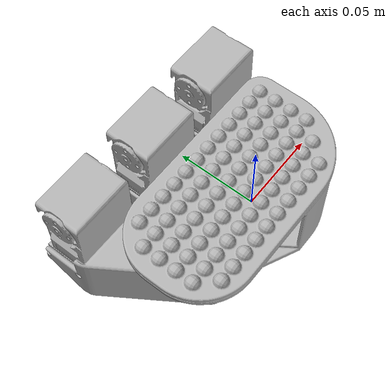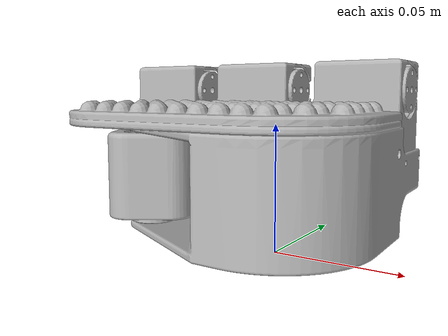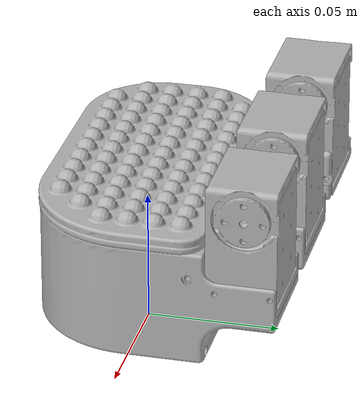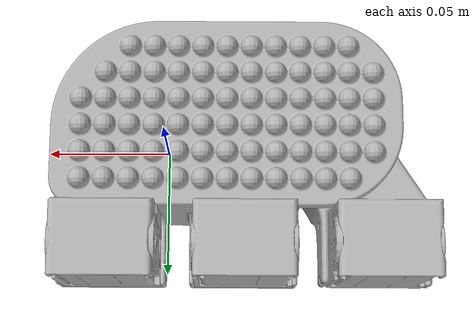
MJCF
<mujoco model="hand_asembly_ver2_URDF_5">
  <compiler angle="radian" meshdir="./mjcf/assets/hand_camera_efim"/>

  <default>
    <joint damping=".5"/>
    <position kp="1"/>
    <geom density="800" rgba="0.7 0.7 0.7 1" contype="0" conaffinity="0" group="0"/>

    <default class="colision_A">
      <geom type="box" rgba="0.1 0.5 0.1 0.0" contype="2" conaffinity="3" group="1"/>
    </default>
    <default class="colision_B">
      <geom type="box" rgba="0.1 0.5 0.1 0.5" contype="4" conaffinity="1" group="2"/>
    </default>

  </default>

  <asset>
    <texture type="skybox" builtin="gradient" rgb1="1 1 1" rgb2="0.5 0.5 0.5" width="265" height="256"/>

    <mesh name="base_link" file="base_link.stl"/>
    <mesh name="proximal_thumb" file="proximal_thumb.stl"/>
    <mesh name="mideal_thumb" file="mideal_thumb.stl"/>
    <mesh name="distal_thumb" file="distal_thumb.stl"/>
    <mesh name="proximal_finger_first" file="proximal_finger_first.stl"/>
    <mesh name="mideal_finger_first" file="mideal_finger_first.stl"/>
    <mesh name="distal_finger_first" file="distal_finger_first.stl"/>
    <mesh name="proximal_finger_second" file="proximal_finger_second.stl"/>
    <mesh name="mideal_finger_second" file="mideal_finger_second.stl"/>
    <mesh name="distal_finger_second" file="distal_finger_second.stl"/>
  </asset>

  <worldbody>
    <light directional="true" diffuse="0.4 0.4 0.4" specular="0.1 0.1 0.1" pos="0 0 5.0" dir="0 0 -1" castshadow="false" />
    <light directional="true" diffuse="0.6 0.6 0.6" specular="0.2 0.2 0.2" pos="0 0 4" dir="0 0 -1" />

    <!-- PALM -->
    <body name="palm" pos="0 0 0">
      <geom type="mesh" mesh="base_link"/>
      <geom pos="-0.0302 0.04346 0.025" quat="1 0 0 0" type="mesh" mesh="proximal_finger_first"/>
      <geom pos="0.0196 0.04346 0.025" quat="1 0 0 0" type="mesh" mesh="proximal_finger_second"/>
      <geom name="base_link_palm_collision" class="colision_A" size="0.0299 0.034515 0.004145"
        pos="-0.0236 -0.00503 0.05287" type="box"/>
      <geom name="base_link_proximal_collision" class="colision_A" size="0.04778 0.014035 0.0289"
        pos="-0.00488 0.04437 0.04885" type="box"/>

      <!-- THUMB -->
      <body name="proximal_thumb" pos="-0.05532 -0.00754 0.0075">
        <inertial pos="-0.015654 0.029955 0.02991" quat="0.664062 0.66104 0.252428 0.241512" mass="0.1524" diaginertia="5.00908e-05 4.26441e-05 3.43441e-05"/>
        <joint name="joint_proximal_thumb" pos="0 0 0" axis="0 0 -1" range="-3.14 0"/>
        <geom type="mesh" mesh="proximal_thumb"/>
        <geom name="proximal_thumb_collision" class="colision_A" size="0.01797 0.03452 0.01791"
          pos="-0.01046 0.01517 0.02043" quat="0.959752 0 0 0.28085" type="box"/>
        <geom name="proximal_thumb_proximal_collision" class="colision_A"
          size="0.0226 0.013585 0.02884" pos="-0.02431 0.05107 0.04123" type="box"/>

        <body name="mideal_thumb" pos="-0.024495 0.05232 0.05561">
          <inertial pos="0.00038305 -0.0013227 0.042746" quat="0.692641 0.0241494 -0.0128903 0.720763" mass="0.080951" diaginertia="2.93704e-05 2.29283e-05 1.49522e-05"/>
          <joint name="joint_mideal_thumb" pos="0 0 0" axis="1 0 0" range="-1.0 1.0"/>
          <geom name="mideal_finger_thumb_collision" class="colision_A"
            size="0.02309 0.016085 0.023535" pos="0 -0.00184 0.04499" type="box"/>

          <!-- CAPSULE -->

          <body name="distal_thumb" pos="0 0 0.05861">
            <joint name="joint_distal_thumb" pos="0 0 0" axis="1 0 0" range="-1.57 1.57"/>
            <geom name="distal_finger_thumb_collision" class="colision_A"
              size="0.0147 0.006515 0.02251" pos="0 -0.01256 0.04826" type="box"/>
            <!-- CAPSULE -->

          </body>

        </body>
      </body>

      <!-- FINGER FIRST -->
      <body name="mideal_finger_first" pos="-0.029825 0.04486 0.06311">
        <inertial pos="0.00038305 -0.00132274 0.0427465" quat="0.692641 0.0241503 -0.0128906 0.720763" mass="0.0809511" diaginertia="2.93701e-05 2.2928e-05 1.49524e-05"/>
        <joint name="joint_mideal_finger_first" pos="0 0 0" axis="1 0 0" range="-1.0 1.0"/>
        <geom name="mideal_finger_first_collision" class="colision_A"
          size="0.02371 0.016085 0.023535" pos="0 -0.00125 0.04563" type="box"/>

        <!-- CAPSULE -->

        <body name="distal_finger_first" pos="0 0 0.05861">
          <inertial pos="0.000332750982547083 -0.00618584483055741 0.039307871683025" quat="0.707098 0.00326816 -0.00326978 0.7071" mass="0.0250979" diaginertia="1.61254e-05 1.12577e-05 9.06401e-06"/>
          <joint name="joint_distal_finger_first" pos="0 0 0" axis="1 0 0" range="-1.57 1.57"/>
          <geom name="distal_finger_first_collision" class="colision_A"
            size="0.0147 0.006515 0.02251" pos="0 -0.01256 0.04826" type="box"/>

          <!-- CAPSULE -->

        </body>

      </body>

      <!-- FINGER SECOND -->
      <body name="mideal_finger_second" pos="0.019975 0.04486 0.06311">
        <inertial pos="0.00038305 -0.00132274 0.0427465" quat="0.692641 0.0241503 -0.0128906 0.720763" mass="0.0809511" diaginertia="2.93701e-05 2.2928e-05 1.49524e-05"/>
        <joint name="joint_mideal_finger_second" pos="0 0 0" axis="1 0 0" range="-1.0 1.0"/>
        <geom name="mideal_finger_second_collision" class="colision_A"
          size="0.02322 0.01608 0.02352" pos="8e-05 -0.00124 0.04517" type="box"/>

        <!-- CAPSULE -->

        <body name="distal_finger_second" pos="0 0 0.05861">
          <inertial pos="0.000332750982547083 -0.00618584483055741 0.039307871683025" quat="0.707098 0.00326816 -0.00326978 0.7071" mass="0.0250979" diaginertia="1.61254e-05 1.12577e-05 9.06401e-06"/>
          <joint name="joint_distal_finger_second" pos="0 0 0" axis="1 0 0" range="-1.57 1.57"/>
          <geom name="distal_finger_second_collision" class="colision_A"
            size="0.0147 0.006515 0.02251" pos="0.00024 -0.01254 0.04851" type="box"/>

          <!-- CAPSULE -->

        </body>

      </body>
    </body>
  </worldbody>

  <actuator>
    <position name="thumb_0" joint="joint_proximal_thumb" ctrlrange="-3.14 0"/>
    <position name="thumb_1" joint="joint_mideal_thumb" ctrlrange="-1.0 1.0"/>
    <position name="thumb_2" joint="joint_distal_thumb" ctrlrange="-1.57 1.57"/>
    <position name="f_finger_0" joint="joint_mideal_finger_first" ctrlrange="-1.0 1.0"/>
    <position name="f_finger_1" joint="joint_distal_finger_first" ctrlrange="-1.57 1.57"/>
    <position name="s_finger_0" joint="joint_mideal_finger_second" ctrlrange="-1.0 1.0"/>
    <position name="s_finger_1" joint="joint_distal_finger_second" ctrlrange="-1.57 1.57"/>
  </actuator>

</mujoco>
